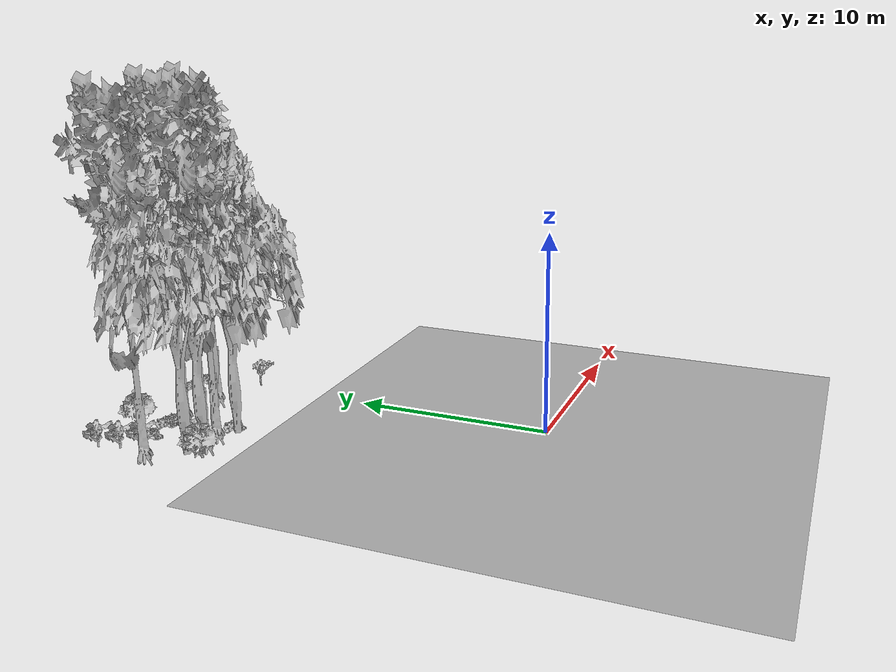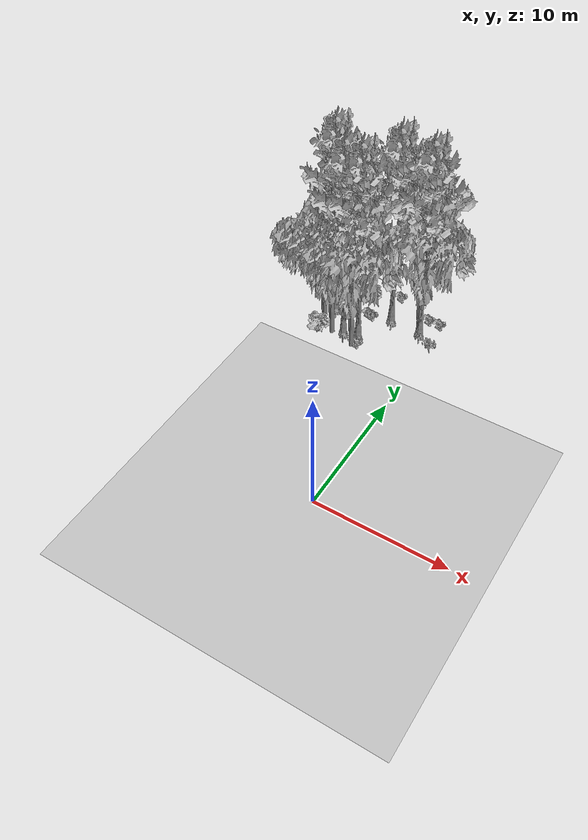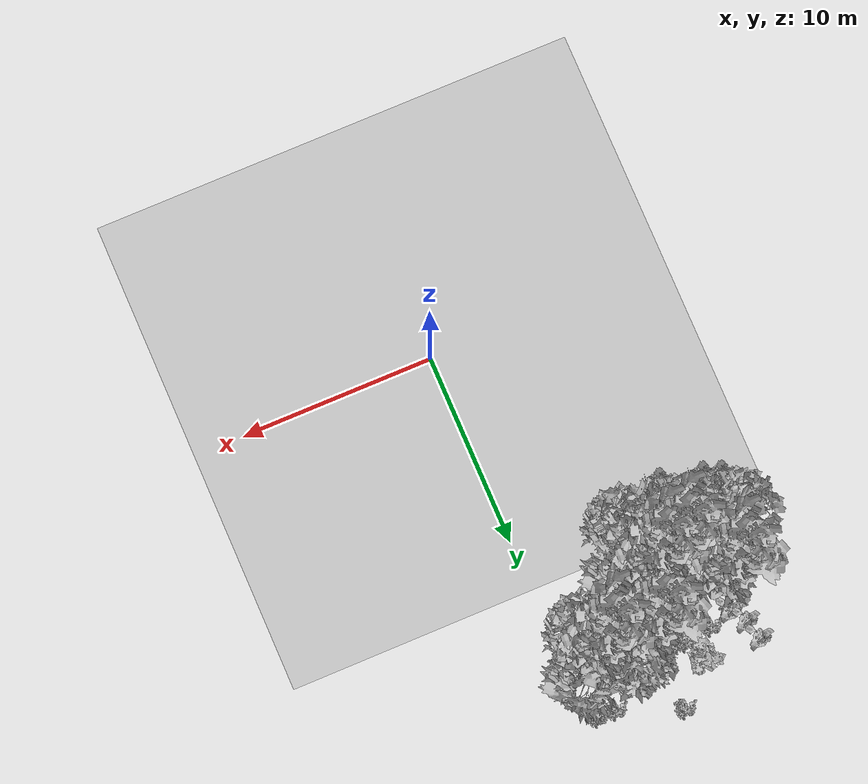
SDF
<sdf version="1.7">
 <world name="default">
  <model name="ground_plane">
   <static>1</static>
   <link name="link">
    <collision name="collision">
     <pose>-50 0 0 0 -0 0</pose>
     <geometry><plane><normal>0 0 1</normal><size>80 80</size></plane></geometry>
     <surface><contact><ode><min_depth>0.01</min_depth><max_vel>0</max_vel></ode></contact></surface>
    </collision>
    <visual name="grass">
     <cast_shadows>0</cast_shadows>
     <geometry>
      <mesh>
       <scale>0.46714285714285714 0.46714285714285714 0.1</scale>
       <uri>file://grass_plane/meshes/grass_plane.dae</uri>
      </mesh>
     </geometry>
    </visual>
   </link>
  </model>
  <model name="Tree 75">
   <static>1</static>
   <pose>-8.248541807229902 14.94490937570717 0 1.57079 -0 0</pose>
   <link name="link">
    <collision name="collision">
     <geometry><mesh><scale>3.5 5 3.5</scale><uri>model://tree_2/meshes/tree_2.obj</uri></mesh></geometry>
    </collision>
    <visual name="visual">
     <geometry><mesh><scale>3.5 5 3.5</scale><uri>model://tree_2/meshes/tree_2.obj</uri></mesh></geometry>
    </visual>
   </link>
  </model>
  <model name="Tree 116">
   <static>1</static>
   <pose>-1.6477806510964044 18.11365985452605 0 1.57079 -0 0</pose>
   <link name="link">
    <collision name="collision">
     <geometry><mesh><scale>3.5 5 3.5</scale><uri>model://tree_2/meshes/tree_2.obj</uri></mesh></geometry>
    </collision>
    <visual name="visual">
     <geometry><mesh><scale>3.5 5 3.5</scale><uri>model://tree_2/meshes/tree_2.obj</uri></mesh></geometry>
    </visual>
   </link>
  </model>
  <model name="Tree 224">
   <static>1</static>
   <pose>-5.384505444064196 14.126199215955225 0 1.57079 -0 0</pose>
   <link name="link">
    <collision name="collision">
     <geometry><mesh><scale>3.5 5 3.5</scale><uri>model://tree_2/meshes/tree_2.obj</uri></mesh></geometry>
    </collision>
    <visual name="visual">
     <geometry><mesh><scale>3.5 5 3.5</scale><uri>model://tree_2/meshes/tree_2.obj</uri></mesh></geometry>
    </visual>
   </link>
  </model>
  <model name="Tree 369">
   <static>1</static>
   <pose>-1.4460440597671465 18.081770814378658 0 1.57079 -0 0</pose>
   <link name="link">
    <collision name="collision">
     <geometry><mesh><scale>3.5 5 3.5</scale><uri>model://tree_9/meshes/tree_9.obj</uri></mesh></geometry>
    </collision>
    <visual name="visual">
     <geometry><mesh><scale>3.5 5 3.5</scale><uri>model://tree_9/meshes/tree_9.obj</uri></mesh></geometry>
    </visual>
   </link>
  </model>
  <model name="Tree 399">
   <static>1</static>
   <pose>-7.410927274324678 14.640993718348973 0 1.57079 -0 0</pose>
   <link name="link">
    <collision name="collision">
     <geometry><mesh><scale>3.5 5 3.5</scale><uri>model://tree_2/meshes/tree_2.obj</uri></mesh></geometry>
    </collision>
    <visual name="visual">
     <geometry><mesh><scale>3.5 5 3.5</scale><uri>model://tree_2/meshes/tree_2.obj</uri></mesh></geometry>
    </visual>
   </link>
  </model>
  <model name="Tree 407">
   <static>1</static>
   <pose>-6.548309701055317 15.104873636575242 0 1.57079 -0 0</pose>
   <link name="link">
    <collision name="collision">
     <geometry><mesh><scale>3.5 5 3.5</scale><uri>model://tree_9/meshes/tree_9.obj</uri></mesh></geometry>
    </collision>
    <visual name="visual">
     <geometry><mesh><scale>3.5 5 3.5</scale><uri>model://tree_9/meshes/tree_9.obj</uri></mesh></geometry>
    </visual>
   </link>
  </model>
  <model name="Tree 556">
   <static>1</static>
   <pose>-4.009191106463092 18.25190040882702 0 1.57079 -0 0</pose>
   <link name="link">
    <collision name="collision">
     <geometry><mesh><scale>3.5 5 3.5</scale><uri>model://tree_9/meshes/tree_9.obj</uri></mesh></geometry>
    </collision>
    <visual name="visual">
     <geometry><mesh><scale>3.5 5 3.5</scale><uri>model://tree_9/meshes/tree_9.obj</uri></mesh></geometry>
    </visual>
   </link>
  </model>
  <model name="Tree 605">
   <static>1</static>
   <pose>-5.37286027905801 15.338537310462499 0 1.57079 -0 0</pose>
   <link name="link">
    <collision name="collision">
     <geometry><mesh><scale>3.5 5 3.5</scale><uri>model://tree_9/meshes/tree_9.obj</uri></mesh></geometry>
    </collision>
    <visual name="visual">
     <geometry><mesh><scale>3.5 5 3.5</scale><uri>model://tree_9/meshes/tree_9.obj</uri></mesh></geometry>
    </visual>
   </link>
  </model>
  <model name="Tree 633">
   <static>1</static>
   <pose>-8.473209304191396 17.18065878671883 0 1.57079 -0 0</pose>
   <link name="link">
    <collision name="collision">
     <geometry><mesh><scale>3.5 5 3.5</scale><uri>model://tree_9/meshes/tree_9.obj</uri></mesh></geometry>
    </collision>
    <visual name="visual">
     <geometry><mesh><scale>3.5 5 3.5</scale><uri>model://tree_9/meshes/tree_9.obj</uri></mesh></geometry>
    </visual>
   </link>
  </model>
  <model name="Bush 37">
   <static>1</static>
   <pose>-8.322240190403665 17.46850025601362 0 1.57079 -0 0</pose>
   <link name="link">
    <collision name="collision">
     <geometry><mesh><scale>2 2 2</scale><uri>model://bush_0/meshes/bush_0.obj</uri></mesh></geometry>
     <surface><contact><collide_without_contact>false</collide_without_contact></contact></surface>
    </collision>
    <visual name="visual">
     <geometry><mesh><scale>2 2 2</scale><uri>model://bush_0/meshes/bush_0.obj</uri></mesh></geometry>
    </visual>
   </link>
  </model>
  <model name="Bush 118">
   <static>1</static>
   <pose>-4.611817762768837 20.92172647924098 0 1.57079 -0 0</pose>
   <link name="link">
    <collision name="collision">
     <geometry><mesh><scale>2 2 2</scale><uri>model://bush_2/meshes/bush_2.obj</uri></mesh></geometry>
     <surface><contact><collide_without_contact>false</collide_without_contact></contact></surface>
    </collision>
    <visual name="visual">
     <geometry><mesh><scale>2 2 2</scale><uri>model://bush_2/meshes/bush_2.obj</uri></mesh></geometry>
    </visual>
   </link>
  </model>
  <model name="Bush 156">
   <static>1</static>
   <pose>-5.586504494878035 17.804225551106654 0 1.57079 -0 0</pose>
   <link name="link">
    <collision name="collision">
     <geometry><mesh><scale>2 2 2</scale><uri>model://bush_2/meshes/bush_2.obj</uri></mesh></geometry>
     <surface><contact><collide_without_contact>false</collide_without_contact></contact></surface>
    </collision>
    <visual name="visual">
     <geometry><mesh><scale>2 2 2</scale><uri>model://bush_2/meshes/bush_2.obj</uri></mesh></geometry>
    </visual>
   </link>
  </model>
  <model name="Bush 185">
   <static>1</static>
   <pose>-8.378217096835968 14.337276872378048 0 1.57079 -0 0</pose>
   <link name="link">
    <collision name="collision">
     <geometry><mesh><scale>2 2 2</scale><uri>model://bush_0/meshes/bush_0.obj</uri></mesh></geometry>
     <surface><contact><collide_without_contact>false</collide_without_contact></contact></surface>
    </collision>
    <visual name="visual">
     <geometry><mesh><scale>2 2 2</scale><uri>model://bush_0/meshes/bush_0.obj</uri></mesh></geometry>
    </visual>
   </link>
  </model>
  <model name="Bush 198">
   <static>1</static>
   <pose>-9.107908134508406 19.288876629475396 0 1.57079 -0 0</pose>
   <link name="link">
    <collision name="collision">
     <geometry><mesh><scale>2 2 2</scale><uri>model://bush_0/meshes/bush_0.obj</uri></mesh></geometry>
     <surface><contact><collide_without_contact>false</collide_without_contact></contact></surface>
    </collision>
    <visual name="visual">
     <geometry><mesh><scale>2 2 2</scale><uri>model://bush_0/meshes/bush_0.obj</uri></mesh></geometry>
    </visual>
   </link>
  </model>
  <model name="Bush 260">
   <static>1</static>
   <pose>-1.4743125805611044 19.667066792733536 0 1.57079 -0 0</pose>
   <link name="link">
    <collision name="collision">
     <geometry><mesh><scale>2 2 2</scale><uri>model://bush_2/meshes/bush_2.obj</uri></mesh></geometry>
     <surface><contact><collide_without_contact>false</collide_without_contact></contact></surface>
    </collision>
    <visual name="visual">
     <geometry><mesh><scale>2 2 2</scale><uri>model://bush_2/meshes/bush_2.obj</uri></mesh></geometry>
    </visual>
   </link>
  </model>
  <model name="Bush 448">
   <static>1</static>
   <pose>-8.303673280888564 13.972945990106652 0 1.57079 -0 0</pose>
   <link name="link">
    <collision name="collision">
     <geometry><mesh><scale>2 2 2</scale><uri>model://bush_1/meshes/bush_1.obj</uri></mesh></geometry>
     <surface><contact><collide_without_contact>false</collide_without_contact></contact></surface>
    </collision>
    <visual name="visual">
     <geometry><mesh><scale>2 2 2</scale><uri>model://bush_1/meshes/bush_1.obj</uri></mesh></geometry>
    </visual>
   </link>
  </model>
  <model name="Bush 484">
   <static>1</static>
   <pose>-6.3834984036966205 18.98395014114007 0 1.57079 -0 0</pose>
   <link name="link">
    <collision name="collision">
     <geometry><mesh><scale>2 2 2</scale><uri>model://bush_1/meshes/bush_1.obj</uri></mesh></geometry>
     <surface><contact><collide_without_contact>false</collide_without_contact></contact></surface>
    </collision>
    <visual name="visual">
     <geometry><mesh><scale>2 2 2</scale><uri>model://bush_1/meshes/bush_1.obj</uri></mesh></geometry>
    </visual>
   </link>
  </model>
  <model name="Bush 485">
   <static>1</static>
   <pose>0.23210053459131075 16.43617194023377 0 1.57079 -0 0</pose>
   <link name="link">
    <collision name="collision">
     <geometry><mesh><scale>2 2 2</scale><uri>model://bush_5/meshes/bush_5.obj</uri></mesh></geometry>
     <surface><contact><collide_without_contact>false</collide_without_contact></contact></surface>
    </collision>
    <visual name="visual">
     <geometry><mesh><scale>2 2 2</scale><uri>model://bush_5/meshes/bush_5.obj</uri></mesh></geometry>
    </visual>
   </link>
  </model>
  <model name="Bush 486">
   <static>1</static>
   <pose>-0.5232087159244259 19.62482139039175 0 1.57079 -0 0</pose>
   <link name="link">
    <collision name="collision">
     <geometry><mesh><scale>2 2 2</scale><uri>model://bush_2/meshes/bush_2.obj</uri></mesh></geometry>
     <surface><contact><collide_without_contact>false</collide_without_contact></contact></surface>
    </collision>
    <visual name="visual">
     <geometry><mesh><scale>2 2 2</scale><uri>model://bush_2/meshes/bush_2.obj</uri></mesh></geometry>
    </visual>
   </link>
  </model>
  <model name="Bush 521">
   <static>1</static>
   <pose>-8.839199086229492 18.239245239209332 0 1.57079 -0 0</pose>
   <link name="link">
    <collision name="collision">
     <geometry><mesh><scale>2 2 2</scale><uri>model://bush_0/meshes/bush_0.obj</uri></mesh></geometry>
     <surface><contact><collide_without_contact>false</collide_without_contact></contact></surface>
    </collision>
    <visual name="visual">
     <geometry><mesh><scale>2 2 2</scale><uri>model://bush_0/meshes/bush_0.obj</uri></mesh></geometry>
    </visual>
   </link>
  </model>
  <model name="Bush 541">
   <static>1</static>
   <pose>-5.110420174312644 14.469324948180422 0 1.57079 -0 0</pose>
   <link name="link">
    <collision name="collision">
     <geometry><mesh><scale>2 2 2</scale><uri>model://bush_2/meshes/bush_2.obj</uri></mesh></geometry>
     <surface><contact><collide_without_contact>false</collide_without_contact></contact></surface>
    </collision>
    <visual name="visual">
     <geometry><mesh><scale>2 2 2</scale><uri>model://bush_2/meshes/bush_2.obj</uri></mesh></geometry>
    </visual>
   </link>
  </model>
  <model name="Bush 546">
   <static>1</static>
   <pose>-5.943595645726404 17.887440005074744 0 1.57079 -0 0</pose>
   <link name="link">
    <collision name="collision">
     <geometry><mesh><scale>2 2 2</scale><uri>model://bush_2/meshes/bush_2.obj</uri></mesh></geometry>
     <surface><contact><collide_without_contact>false</collide_without_contact></contact></surface>
    </collision>
    <visual name="visual">
     <geometry><mesh><scale>2 2 2</scale><uri>model://bush_2/meshes/bush_2.obj</uri></mesh></geometry>
    </visual>
   </link>
  </model>
  <model name="Bush 566">
   <static>1</static>
   <pose>-7.386701776822942 17.661146441509985 0 1.57079 -0 0</pose>
   <link name="link">
    <collision name="collision">
     <geometry><mesh><scale>2 2 2</scale><uri>model://bush_2/meshes/bush_2.obj</uri></mesh></geometry>
     <surface><contact><collide_without_contact>false</collide_without_contact></contact></surface>
    </collision>
    <visual name="visual">
     <geometry><mesh><scale>2 2 2</scale><uri>model://bush_2/meshes/bush_2.obj</uri></mesh></geometry>
    </visual>
   </link>
  </model>
 </world>
</sdf>
